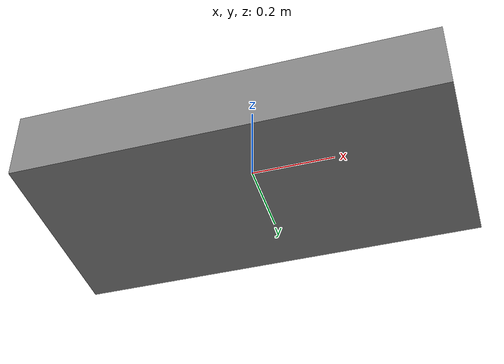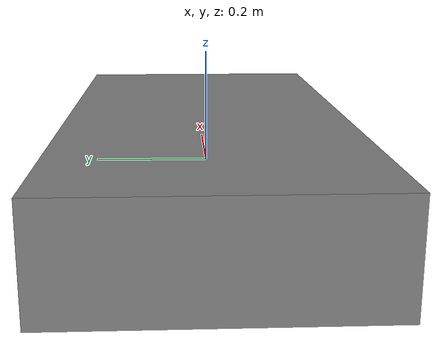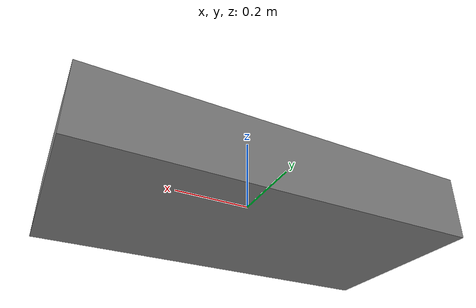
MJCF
<mujoco model="asset">
  <asset>
    <mesh name="bullet_banana_visual" file="bullet_banana.normalized.obj"/>
    <mesh name="bullet_banana_collision" file="bullet_banana.collision_box.obj"/>
  </asset>
  <worldbody><body name="bullet_banana">
    <geom type="mesh" mesh="bullet_banana_visual" contype="0" conaffinity="0" rgba="0.65 0.68 0.72 1"/>
    <geom type="mesh" mesh="bullet_banana_collision" density="1000"/>
  </body></worldbody>
</mujoco>
